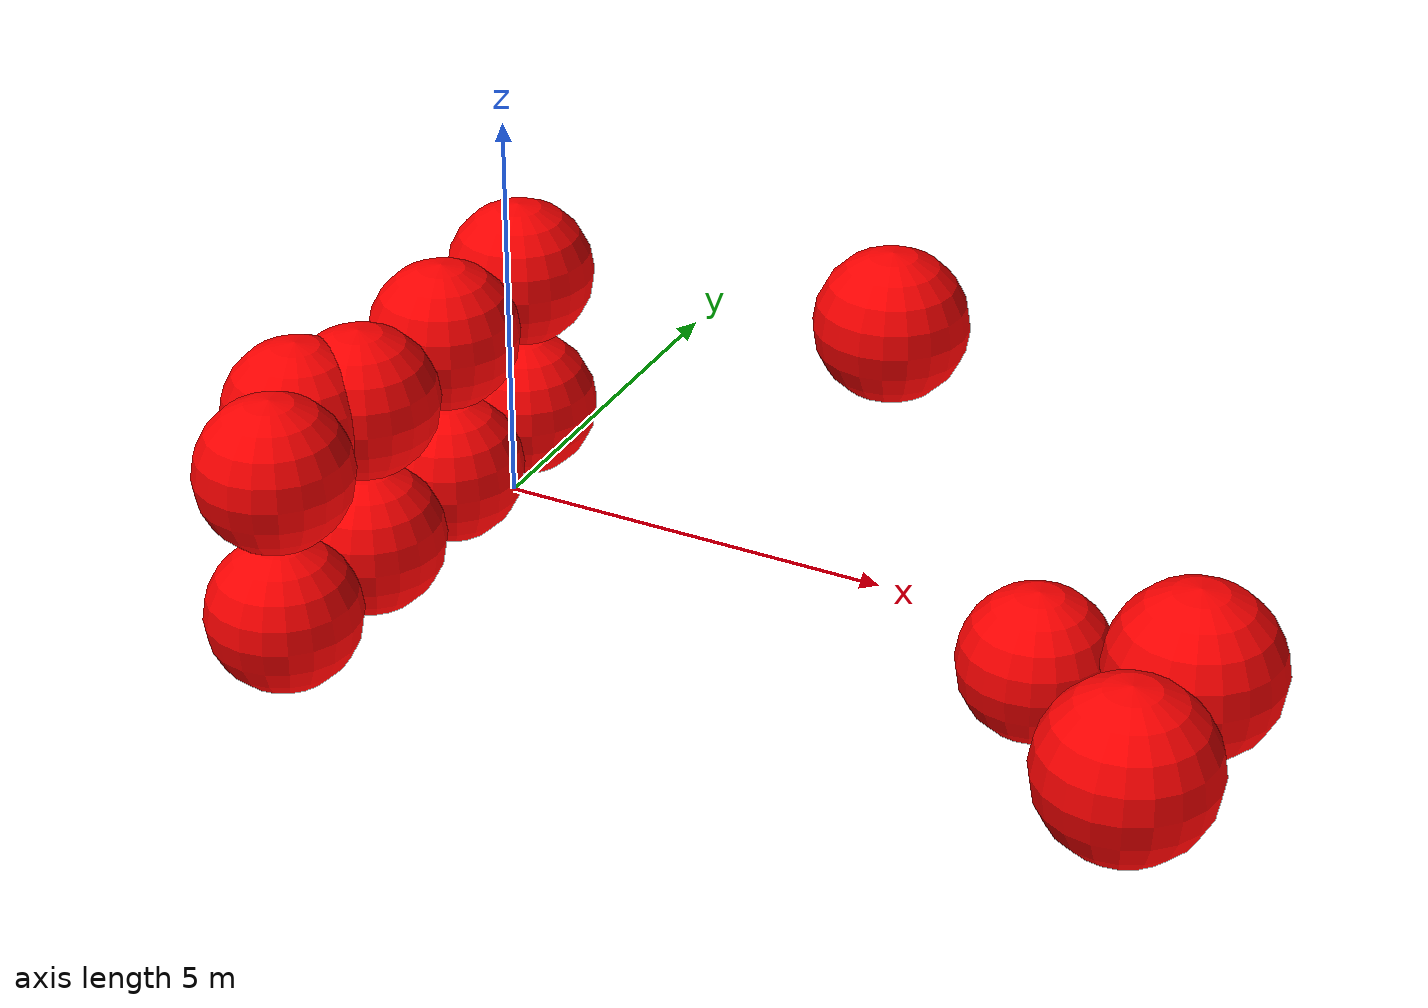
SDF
<sdf version="1.8">
 <world name="3d_world">
  <model name="obstacle_6" canonical_link="obstacle">
   <static>true</static>
   <pose relative_to="world">-2.43 -1.07 1.00 0 0 0</pose>
   <link name="obstacle">
    <pose relative_to="__model__">0.0 0 0.0 0 0 0</pose>
    <visual name="visual">
     <geometry><sphere><radius>1.00</radius></sphere></geometry>
     <material>
      <ambient>1.0 0.0 0.0 1</ambient>
      <diffuse>1.0 0.0 0.0 1</diffuse>
      <specular>1.0 0.0 0.0 1</specular>
     </material>
    </visual>
    <collision name="collision"><geometry><sphere><radius>1.00</radius></sphere></geometry></collision>
    <enable_gravity>false</enable_gravity>
   </link>
   <plugin filename="ignition-gazebo-velocity-control-system" name="ignition::gazebo::systems::VelocityControl">
    <initial_linear>0.00 0.00 0.00</initial_linear>
    <initial_angular>0 0 0</initial_angular>
   </plugin>
   <plugin filename="ignition-gazebo-odometry-publisher-system" name="ignition::gazebo::systems::OdometryPublisher">
    <dimensions>3</dimensions>
   </plugin>
  </model>
  <model name="obstacle_7" canonical_link="obstacle">
   <static>true</static>
   <pose relative_to="world">-1.91 -2.44 -1.00 0 0 0</pose>
   <link name="obstacle">
    <pose relative_to="__model__">0.0 0 0.0 0 0 0</pose>
    <visual name="visual">
     <geometry><sphere><radius>1.00</radius></sphere></geometry>
     <material>
      <ambient>1.0 0.0 0.0 1</ambient>
      <diffuse>1.0 0.0 0.0 1</diffuse>
      <specular>1.0 0.0 0.0 1</specular>
     </material>
    </visual>
    <collision name="collision"><geometry><sphere><radius>1.00</radius></sphere></geometry></collision>
    <enable_gravity>false</enable_gravity>
   </link>
   <plugin filename="ignition-gazebo-velocity-control-system" name="ignition::gazebo::systems::VelocityControl">
    <initial_linear>0.00 0.00 0.00</initial_linear>
    <initial_angular>0 0 0</initial_angular>
   </plugin>
   <plugin filename="ignition-gazebo-odometry-publisher-system" name="ignition::gazebo::systems::OdometryPublisher">
    <dimensions>3</dimensions>
   </plugin>
  </model>
  <model name="obstacle_8" canonical_link="obstacle">
   <static>true</static>
   <pose relative_to="world">-1.91 -0.44 -1.00 0 0 0</pose>
   <link name="obstacle">
    <pose relative_to="__model__">0.0 0 0.0 0 0 0</pose>
    <visual name="visual">
     <geometry><sphere><radius>1.00</radius></sphere></geometry>
     <material>
      <ambient>1.0 0.0 0.0 1</ambient>
      <diffuse>1.0 0.0 0.0 1</diffuse>
      <specular>1.0 0.0 0.0 1</specular>
     </material>
    </visual>
    <collision name="collision"><geometry><sphere><radius>1.00</radius></sphere></geometry></collision>
    <enable_gravity>false</enable_gravity>
   </link>
   <plugin filename="ignition-gazebo-velocity-control-system" name="ignition::gazebo::systems::VelocityControl">
    <initial_linear>0.00 0.00 0.00</initial_linear>
    <initial_angular>0 0 0</initial_angular>
   </plugin>
   <plugin filename="ignition-gazebo-odometry-publisher-system" name="ignition::gazebo::systems::OdometryPublisher">
    <dimensions>3</dimensions>
   </plugin>
  </model>
  <model name="obstacle_9" canonical_link="obstacle">
   <static>true</static>
   <pose relative_to="world">-1.91 1.56 -1.00 0 0 0</pose>
   <link name="obstacle">
    <pose relative_to="__model__">0.0 0 0.0 0 0 0</pose>
    <visual name="visual">
     <geometry><sphere><radius>1.00</radius></sphere></geometry>
     <material>
      <ambient>1.0 0.0 0.0 1</ambient>
      <diffuse>1.0 0.0 0.0 1</diffuse>
      <specular>1.0 0.0 0.0 1</specular>
     </material>
    </visual>
    <collision name="collision"><geometry><sphere><radius>1.00</radius></sphere></geometry></collision>
    <enable_gravity>false</enable_gravity>
   </link>
   <plugin filename="ignition-gazebo-velocity-control-system" name="ignition::gazebo::systems::VelocityControl">
    <initial_linear>0.00 0.00 0.00</initial_linear>
    <initial_angular>0 0 0</initial_angular>
   </plugin>
   <plugin filename="ignition-gazebo-odometry-publisher-system" name="ignition::gazebo::systems::OdometryPublisher">
    <dimensions>3</dimensions>
   </plugin>
  </model>
  <model name="obstacle_10" canonical_link="obstacle">
   <static>true</static>
   <pose relative_to="world">-1.91 3.56 -1.00 0 0 0</pose>
   <link name="obstacle">
    <pose relative_to="__model__">0.0 0 0.0 0 0 0</pose>
    <visual name="visual">
     <geometry><sphere><radius>1.00</radius></sphere></geometry>
     <material>
      <ambient>1.0 0.0 0.0 1</ambient>
      <diffuse>1.0 0.0 0.0 1</diffuse>
      <specular>1.0 0.0 0.0 1</specular>
     </material>
    </visual>
    <collision name="collision"><geometry><sphere><radius>1.00</radius></sphere></geometry></collision>
    <enable_gravity>false</enable_gravity>
   </link>
   <plugin filename="ignition-gazebo-velocity-control-system" name="ignition::gazebo::systems::VelocityControl">
    <initial_linear>0.00 0.00 0.00</initial_linear>
    <initial_angular>0 0 0</initial_angular>
   </plugin>
   <plugin filename="ignition-gazebo-odometry-publisher-system" name="ignition::gazebo::systems::OdometryPublisher">
    <dimensions>3</dimensions>
   </plugin>
  </model>
  <model name="obstacle_11" canonical_link="obstacle">
   <static>true</static>
   <pose relative_to="world">-1.91 -2.44 1.00 0 0 0</pose>
   <link name="obstacle">
    <pose relative_to="__model__">0.0 0 0.0 0 0 0</pose>
    <visual name="visual">
     <geometry><sphere><radius>1.00</radius></sphere></geometry>
     <material>
      <ambient>1.0 0.0 0.0 1</ambient>
      <diffuse>1.0 0.0 0.0 1</diffuse>
      <specular>1.0 0.0 0.0 1</specular>
     </material>
    </visual>
    <collision name="collision"><geometry><sphere><radius>1.00</radius></sphere></geometry></collision>
    <enable_gravity>false</enable_gravity>
   </link>
   <plugin filename="ignition-gazebo-velocity-control-system" name="ignition::gazebo::systems::VelocityControl">
    <initial_linear>0.00 0.00 0.00</initial_linear>
    <initial_angular>0 0 0</initial_angular>
   </plugin>
   <plugin filename="ignition-gazebo-odometry-publisher-system" name="ignition::gazebo::systems::OdometryPublisher">
    <dimensions>3</dimensions>
   </plugin>
  </model>
  <model name="obstacle_12" canonical_link="obstacle">
   <static>true</static>
   <pose relative_to="world">-1.91 -0.44 1.00 0 0 0</pose>
   <link name="obstacle">
    <pose relative_to="__model__">0.0 0 0.0 0 0 0</pose>
    <visual name="visual">
     <geometry><sphere><radius>1.00</radius></sphere></geometry>
     <material>
      <ambient>1.0 0.0 0.0 1</ambient>
      <diffuse>1.0 0.0 0.0 1</diffuse>
      <specular>1.0 0.0 0.0 1</specular>
     </material>
    </visual>
    <collision name="collision"><geometry><sphere><radius>1.00</radius></sphere></geometry></collision>
    <enable_gravity>false</enable_gravity>
   </link>
   <plugin filename="ignition-gazebo-velocity-control-system" name="ignition::gazebo::systems::VelocityControl">
    <initial_linear>0.00 0.00 0.00</initial_linear>
    <initial_angular>0 0 0</initial_angular>
   </plugin>
   <plugin filename="ignition-gazebo-odometry-publisher-system" name="ignition::gazebo::systems::OdometryPublisher">
    <dimensions>3</dimensions>
   </plugin>
  </model>
  <model name="obstacle_13" canonical_link="obstacle">
   <static>true</static>
   <pose relative_to="world">-1.91 1.56 1.00 0 0 0</pose>
   <link name="obstacle">
    <pose relative_to="__model__">0.0 0 0.0 0 0 0</pose>
    <visual name="visual">
     <geometry><sphere><radius>1.00</radius></sphere></geometry>
     <material>
      <ambient>1.0 0.0 0.0 1</ambient>
      <diffuse>1.0 0.0 0.0 1</diffuse>
      <specular>1.0 0.0 0.0 1</specular>
     </material>
    </visual>
    <collision name="collision"><geometry><sphere><radius>1.00</radius></sphere></geometry></collision>
    <enable_gravity>false</enable_gravity>
   </link>
   <plugin filename="ignition-gazebo-velocity-control-system" name="ignition::gazebo::systems::VelocityControl">
    <initial_linear>0.00 0.00 0.00</initial_linear>
    <initial_angular>0 0 0</initial_angular>
   </plugin>
   <plugin filename="ignition-gazebo-odometry-publisher-system" name="ignition::gazebo::systems::OdometryPublisher">
    <dimensions>3</dimensions>
   </plugin>
  </model>
  <model name="obstacle_14" canonical_link="obstacle">
   <static>true</static>
   <pose relative_to="world">-1.91 3.56 1.00 0 0 0</pose>
   <link name="obstacle">
    <pose relative_to="__model__">0.0 0 0.0 0 0 0</pose>
    <visual name="visual">
     <geometry><sphere><radius>1.00</radius></sphere></geometry>
     <material>
      <ambient>1.0 0.0 0.0 1</ambient>
      <diffuse>1.0 0.0 0.0 1</diffuse>
      <specular>1.0 0.0 0.0 1</specular>
     </material>
    </visual>
    <collision name="collision"><geometry><sphere><radius>1.00</radius></sphere></geometry></collision>
    <enable_gravity>false</enable_gravity>
   </link>
   <plugin filename="ignition-gazebo-velocity-control-system" name="ignition::gazebo::systems::VelocityControl">
    <initial_linear>0.00 0.00 0.00</initial_linear>
    <initial_angular>0 0 0</initial_angular>
   </plugin>
   <plugin filename="ignition-gazebo-odometry-publisher-system" name="ignition::gazebo::systems::OdometryPublisher">
    <dimensions>3</dimensions>
   </plugin>
  </model>
  <model name="obstacle_21" canonical_link="obstacle">
   <static>false</static>
   <pose relative_to="world">6.68 1.00 -1.18 0 0 0</pose>
   <link name="obstacle">
    <pose relative_to="__model__">0.0 0 0.0 0 0 0</pose>
    <visual name="visual">
     <geometry><sphere><radius>1.00</radius></sphere></geometry>
     <material>
      <ambient>1.0 0.0 0.0 1</ambient>
      <diffuse>1.0 0.0 0.0 1</diffuse>
      <specular>1.0 0.0 0.0 1</specular>
     </material>
    </visual>
    <collision name="collision"><geometry><sphere><radius>1.00</radius></sphere></geometry></collision>
    <enable_gravity>false</enable_gravity>
   </link>
   <plugin filename="ignition-gazebo-velocity-control-system" name="ignition::gazebo::systems::VelocityControl">
    <initial_linear>0.00 -0.58 0.53</initial_linear>
    <initial_angular>0 0 0</initial_angular>
   </plugin>
   <plugin filename="ignition-gazebo-odometry-publisher-system" name="ignition::gazebo::systems::OdometryPublisher">
    <dimensions>3</dimensions>
   </plugin>
  </model>
  <model name="obstacle_22" canonical_link="obstacle">
   <static>false</static>
   <pose relative_to="world">3.65 3.27 1.67 0 0 0</pose>
   <link name="obstacle">
    <pose relative_to="__model__">0.0 0 0.0 0 0 0</pose>
    <visual name="visual">
     <geometry><sphere><radius>1.00</radius></sphere></geometry>
     <material>
      <ambient>1.0 0.0 0.0 1</ambient>
      <diffuse>1.0 0.0 0.0 1</diffuse>
      <specular>1.0 0.0 0.0 1</specular>
     </material>
    </visual>
    <collision name="collision"><geometry><sphere><radius>1.00</radius></sphere></geometry></collision>
    <enable_gravity>false</enable_gravity>
   </link>
   <plugin filename="ignition-gazebo-velocity-control-system" name="ignition::gazebo::systems::VelocityControl">
    <initial_linear>0.00 -1.46 -0.83</initial_linear>
    <initial_angular>0 0 0</initial_angular>
   </plugin>
   <plugin filename="ignition-gazebo-odometry-publisher-system" name="ignition::gazebo::systems::OdometryPublisher">
    <dimensions>3</dimensions>
   </plugin>
  </model>
  <model name="obstacle_23" canonical_link="obstacle">
   <static>false</static>
   <pose relative_to="world">9.84 -4.82 1.94 0 0 0</pose>
   <link name="obstacle">
    <pose relative_to="__model__">0.0 0 0.0 0 0 0</pose>
    <visual name="visual">
     <geometry><sphere><radius>1.00</radius></sphere></geometry>
     <material>
      <ambient>1.0 0.0 0.0 1</ambient>
      <diffuse>1.0 0.0 0.0 1</diffuse>
      <specular>1.0 0.0 0.0 1</specular>
     </material>
    </visual>
    <collision name="collision"><geometry><sphere><radius>1.00</radius></sphere></geometry></collision>
    <enable_gravity>false</enable_gravity>
   </link>
   <plugin filename="ignition-gazebo-velocity-control-system" name="ignition::gazebo::systems::VelocityControl">
    <initial_linear>0.00 1.63 -0.89</initial_linear>
    <initial_angular>0 0 0</initial_angular>
   </plugin>
   <plugin filename="ignition-gazebo-odometry-publisher-system" name="ignition::gazebo::systems::OdometryPublisher">
    <dimensions>3</dimensions>
   </plugin>
  </model>
  <model name="obstacle_24" canonical_link="obstacle">
   <static>false</static>
   <pose relative_to="world">9.84 -2.82 1.94 0 0 0</pose>
   <link name="obstacle">
    <pose relative_to="__model__">0.0 0 0.0 0 0 0</pose>
    <visual name="visual">
     <geometry><sphere><radius>1.00</radius></sphere></geometry>
     <material>
      <ambient>1.0 0.0 0.0 1</ambient>
      <diffuse>1.0 0.0 0.0 1</diffuse>
      <specular>1.0 0.0 0.0 1</specular>
     </material>
    </visual>
    <collision name="collision"><geometry><sphere><radius>1.00</radius></sphere></geometry></collision>
    <enable_gravity>false</enable_gravity>
   </link>
   <plugin filename="ignition-gazebo-velocity-control-system" name="ignition::gazebo::systems::VelocityControl">
    <initial_linear>0.00 1.63 -0.89</initial_linear>
    <initial_angular>0 0 0</initial_angular>
   </plugin>
   <plugin filename="ignition-gazebo-odometry-publisher-system" name="ignition::gazebo::systems::OdometryPublisher">
    <dimensions>3</dimensions>
   </plugin>
  </model>
 </world>
</sdf>
